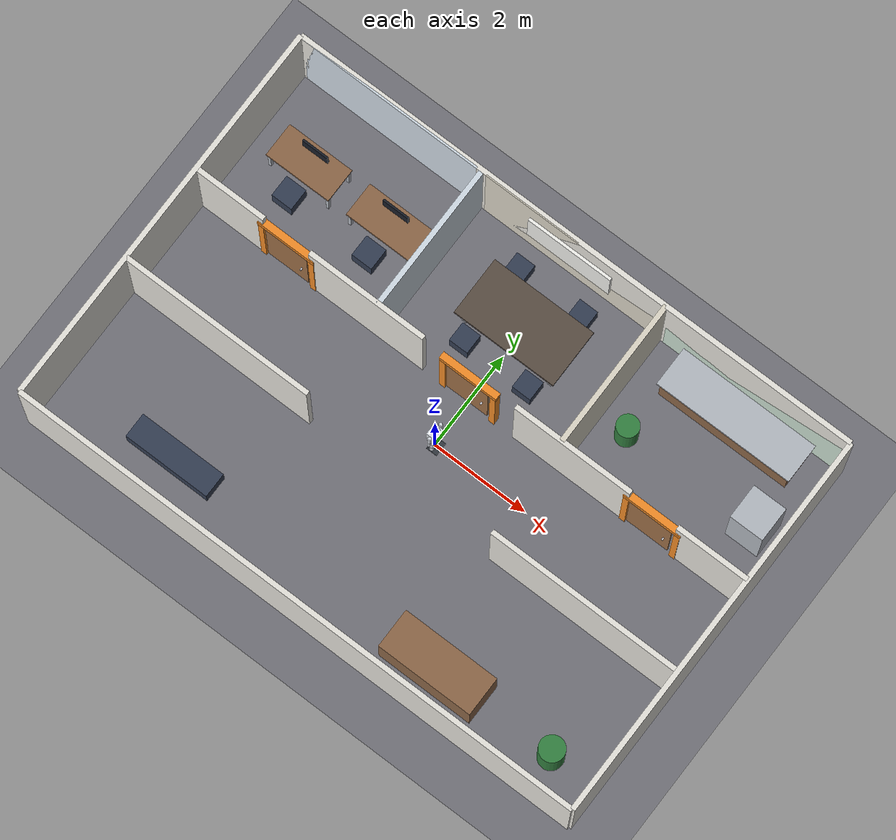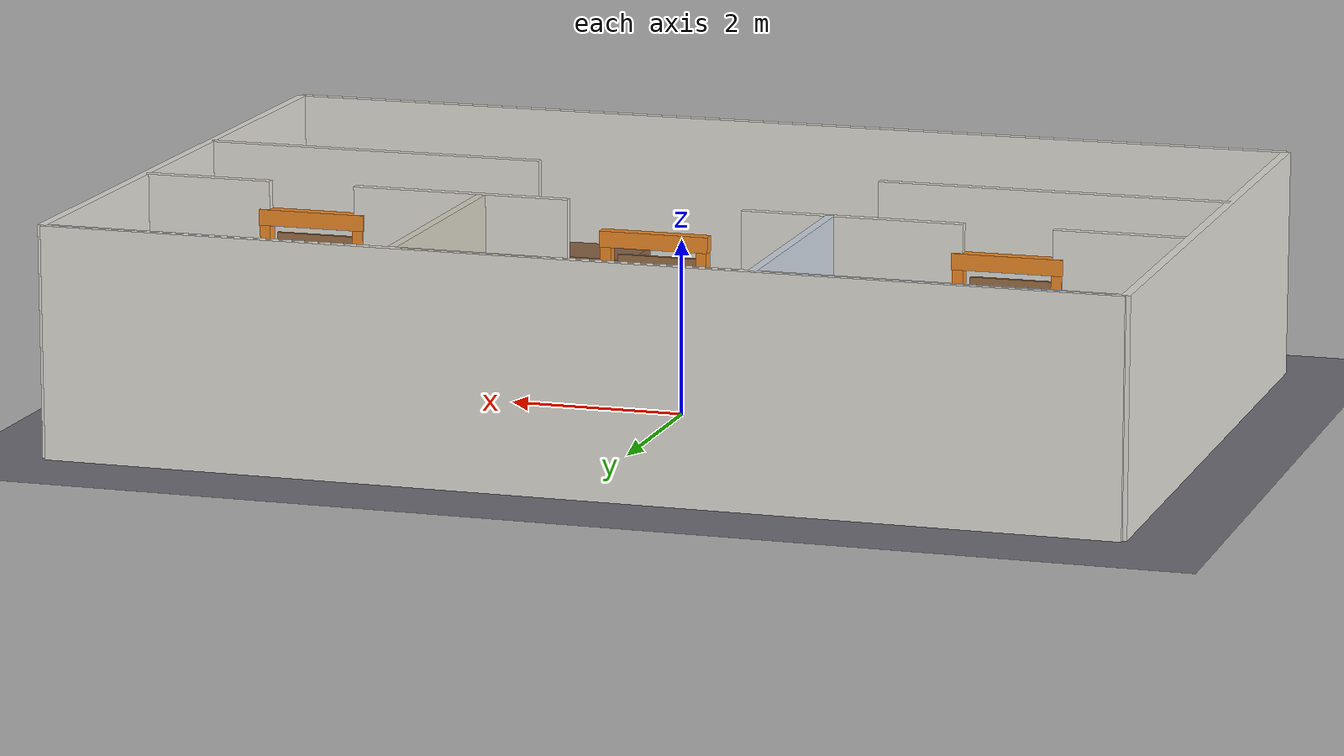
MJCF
<mujoco model="pyunto_office">
  <include file="pyunto_h1.xml"/>

  <statistic center="0 0 1.0" extent="8"/>

  <option timestep="0.005" iterations="50" solver="Newton" cone="elliptic"/>

  <visual>
    <headlight diffuse="0.55 0.55 0.55" ambient="0.4 0.4 0.4" specular="0 0 0"/>
    <rgba haze="0.6 0.65 0.7 1"/>
    <global azimuth="150" elevation="-25" offwidth="1600" offheight="1200"/>
    <map znear="0.02" zfar="60"/>
  </visual>

  <asset>
    <texture type="skybox" builtin="gradient" rgb1="0.75 0.8 0.85" rgb2="0.45 0.5 0.58"
             width="512" height="640"/>

    <!-- Floor: neutral office carpet -->
    <texture name="carpet_tex" type="2d" builtin="checker" rgb1="0.42 0.42 0.45"
             rgb2="0.46 0.46 0.49" width="512" height="512"/>
    <material name="carpet" texture="carpet_tex" texrepeat="24 16" texuniform="true"
              reflectance="0.02"/>

    <!-- Rooms are colour-coded so they are visually distinguishable from images alone. -->
    <material name="wall"        rgba="0.90 0.89 0.86 1" specular="0.1"/>
    <material name="wall_work"   rgba="0.82 0.86 0.90 1" specular="0.1"/>  <!-- cool blue -->
    <material name="wall_meet"   rgba="0.86 0.84 0.78 1" specular="0.1"/>  <!-- warm beige -->
    <material name="wall_pantry" rgba="0.80 0.88 0.82 1" specular="0.1"/>  <!-- soft green -->

    <material name="door_panel" rgba="0.62 0.44 0.28 1" specular="0.25" shininess="0.3"/>
    <material name="door_frame" rgba="0.95 0.55 0.15 1" specular="0.3"/>   <!-- accent -->
    <material name="handle_mat" rgba="0.85 0.85 0.88 1" specular="0.8" shininess="0.8"/>

    <material name="desk"   rgba="0.55 0.40 0.28 1" specular="0.2"/>
    <material name="table"  rgba="0.35 0.30 0.26 1" specular="0.2"/>
    <material name="chair"  rgba="0.20 0.24 0.32 1" specular="0.2"/>
    <material name="metal"  rgba="0.70 0.72 0.75 1" specular="0.6" shininess="0.6"/>
    <material name="screen" rgba="0.10 0.12 0.16 1" specular="0.5" shininess="0.7"/>
    <material name="plant"  rgba="0.20 0.50 0.25 1"/>
    <material name="board"  rgba="0.95 0.95 0.93 1" specular="0.3"/>
  </asset>

  <default>
    <default class="wall">
      <geom type="box" condim="3" friction="0.8 0.05 0.01" material="wall" group="1"/>
    </default>
    <default class="furniture">
      <geom type="box" condim="3" friction="0.9 0.05 0.01" group="1"/>
    </default>
    <default class="door">
      <!--
        damping smooths the swing; a weak spring returns the door to closed.
        frictionloss is deliberately small - too much and the robot cannot push it open at all.
      -->
      <joint type="hinge" axis="0 0 1" damping="2.5" frictionloss="0.2" springref="0"
             stiffness="0.8" range="-1.9 1.9"/>
      <!--
        density 240 gives a ~22 kg door leaf. Inheriting the robot's 900 made it 100 kg, which
        no arm could move. condim=3 keeps contact cheap; the panel never needs to spin in place.
      -->
      <geom type="box" condim="3" density="240" friction="0.5 0.05 0.01"
            material="door_panel" group="1"/>
    </default>
  </default>

  <worldbody>
    <light name="ceil_1" pos="-4 0 3.4" dir="0 0 -1" directional="false"
           diffuse="0.45 0.45 0.44" attenuation="1 0 0.02"/>
    <light name="ceil_2" pos="0 0 3.4" dir="0 0 -1" directional="false"
           diffuse="0.45 0.45 0.44" attenuation="1 0 0.02"/>
    <light name="ceil_3" pos="4 0 3.4" dir="0 0 -1" directional="false"
           diffuse="0.45 0.45 0.44" attenuation="1 0 0.02"/>
    <light name="sun" pos="0 -8 8" dir="0 0.6 -1" directional="true" diffuse="0.35 0.35 0.35"/>

    <geom name="floor" type="plane" size="0 0 0.05" material="carpet"
          condim="6" friction="1.2 0.05 0.01"/>

    <!-- Overview cameras for debugging and demo video. head_cam on the robot is the real sensor. -->
    <camera name="overview" pos="0 -13 11" xyaxes="1 0 0 0 0.65 0.76"/>
    <camera name="corridor_cam" pos="-7 0 2.2" xyaxes="0 1 0 0.25 0 0.97"/>

    <!-- =========================== OUTER SHELL =========================== -->
    <!-- 12 x 8 m footprint, 2.6 m walls, 0.1 m thick -->
    <geom name="wall_north" class="wall" size="6.0 0.05 1.3" pos="0 4.0 1.3"/>
    <geom name="wall_south" class="wall" size="6.0 0.05 1.3" pos="0 -4.0 1.3"/>
    <geom name="wall_west"  class="wall" size="0.05 4.0 1.3" pos="-6.0 0 1.3"/>
    <geom name="wall_east"  class="wall" size="0.05 4.0 1.3" pos="6.0 0 1.3"/>

    <!-- ==================== ROOM DIVIDERS (north half) ==================== -->
    <!-- Two partitions split the north strip into workspace | meeting | pantry -->
    <geom name="part_1" class="wall" size="0.05 1.5 1.3" pos="-2.0 2.5 1.3" material="wall_work"/>
    <geom name="part_2" class="wall" size="0.05 1.5 1.3" pos="2.0 2.5 1.3" material="wall_meet"/>

    <!--
      The wall between the corridor and the north rooms, with three doorway gaps.
      Gaps are centred at x = -4.0 (workspace), 0.0 (meeting), 4.0 (pantry), each 1.0 m wide.
    -->
    <geom name="nwall_a" class="wall" size="0.75 0.05 1.3" pos="-5.25 1.0 1.3"/>
    <geom name="nwall_b" class="wall" size="1.25 0.05 1.3" pos="-2.25 1.0 1.3"/>
    <geom name="nwall_c" class="wall" size="1.25 0.05 1.3" pos="2.25 1.0 1.3"/>
    <geom name="nwall_d" class="wall" size="0.75 0.05 1.3" pos="5.25 1.0 1.3"/>

    <!-- Corridor / lobby divider, with one wide opening in the middle -->
    <geom name="swall_a" class="wall" size="2.0 0.05 1.3" pos="-4.0 -1.0 1.3"/>
    <geom name="swall_b" class="wall" size="2.0 0.05 1.3" pos="4.0 -1.0 1.3"/>

    <!-- =========================== DOOR 1: WORKSPACE =========================== -->
    <!-- Bright frames make doors findable from a distance in camera images. -->
    <geom name="frame_1a" type="box" size="0.06 0.07 1.05" pos="-4.55 1.0 1.05"
          material="door_frame"/>
    <geom name="frame_1b" type="box" size="0.06 0.07 1.05" pos="-3.45 1.0 1.05"
          material="door_frame"/>
    <geom name="frame_1top" type="box" size="0.62 0.07 0.09" pos="-4.0 1.0 2.19"
          material="door_frame"/>
    <body name="door_workspace" pos="-4.5 1.0 1.02">
      <joint name="door_1" class="door"/>
      <geom name="door_1_panel" class="door" size="0.46 0.022 1.0" pos="0.46 0 0"/>
      <!-- Handle at 0.90 m: the height the arm reach was designed around. -->
      <geom name="door_1_handle" type="capsule" fromto="0.80 -0.06 -0.12 0.80 0.06 -0.12"
            size="0.018" material="handle_mat"/>
      <site name="handle_1" pos="0.80 0 -0.12" size="0.03" rgba="1 0.3 0 0.35"/>
    </body>

    <!-- =========================== DOOR 2: MEETING =========================== -->
    <geom name="frame_2a" type="box" size="0.06 0.07 1.05" pos="-0.55 1.0 1.05"
          material="door_frame"/>
    <geom name="frame_2b" type="box" size="0.06 0.07 1.05" pos="0.55 1.0 1.05"
          material="door_frame"/>
    <geom name="frame_2top" type="box" size="0.62 0.07 0.09" pos="0 1.0 2.19"
          material="door_frame"/>
    <body name="door_meeting" pos="-0.5 1.0 1.02">
      <joint name="door_2" class="door"/>
      <geom name="door_2_panel" class="door" size="0.46 0.022 1.0" pos="0.46 0 0"/>
      <geom name="door_2_handle" type="capsule" fromto="0.80 -0.06 -0.12 0.80 0.06 -0.12"
            size="0.018" material="handle_mat"/>
      <site name="handle_2" pos="0.80 0 -0.12" size="0.03" rgba="1 0.3 0 0.35"/>
    </body>

    <!-- =========================== DOOR 3: PANTRY =========================== -->
    <geom name="frame_3a" type="box" size="0.06 0.07 1.05" pos="3.45 1.0 1.05"
          material="door_frame"/>
    <geom name="frame_3b" type="box" size="0.06 0.07 1.05" pos="4.55 1.0 1.05"
          material="door_frame"/>
    <geom name="frame_3top" type="box" size="0.62 0.07 0.09" pos="4.0 1.0 2.19"
          material="door_frame"/>
    <body name="door_pantry" pos="3.5 1.0 1.02">
      <joint name="door_3" class="door"/>
      <geom name="door_3_panel" class="door" size="0.46 0.022 1.0" pos="0.46 0 0"/>
      <geom name="door_3_handle" type="capsule" fromto="0.80 -0.06 -0.12 0.80 0.06 -0.12"
            size="0.018" material="handle_mat"/>
      <site name="handle_3" pos="0.80 0 -0.12" size="0.03" rgba="1 0.3 0 0.35"/>
    </body>

    <!-- ========================= WORKSPACE FURNITURE ========================= -->
    <!-- Desks with monitors: the visual signature of "the workspace". -->
    <geom name="ws_wall_tint" class="wall" size="1.9 0.02 1.3" pos="-4.0 3.97 1.3"
          material="wall_work"/>
    <body name="desk_1" pos="-4.8 2.6 0">
      <geom name="desk_1_top" class="furniture" size="0.7 0.35 0.03" pos="0 0 0.72"
            material="desk"/>
      <geom name="desk_1_l1" class="furniture" size="0.03 0.03 0.36" pos="-0.65 -0.3 0.36"
            material="metal"/>
      <geom name="desk_1_l2" class="furniture" size="0.03 0.03 0.36" pos="0.65 -0.3 0.36"
            material="metal"/>
      <geom name="desk_1_l3" class="furniture" size="0.03 0.03 0.36" pos="-0.65 0.3 0.36"
            material="metal"/>
      <geom name="desk_1_l4" class="furniture" size="0.03 0.03 0.36" pos="0.65 0.3 0.36"
            material="metal"/>
      <geom name="mon_1" class="furniture" size="0.28 0.02 0.18" pos="0 0.2 0.93"
            material="screen"/>
    </body>
    <body name="desk_2" pos="-3.0 2.6 0">
      <geom name="desk_2_top" class="furniture" size="0.7 0.35 0.03" pos="0 0 0.72"
            material="desk"/>
      <geom name="desk_2_l1" class="furniture" size="0.03 0.03 0.36" pos="-0.65 -0.3 0.36"
            material="metal"/>
      <geom name="desk_2_l2" class="furniture" size="0.03 0.03 0.36" pos="0.65 -0.3 0.36"
            material="metal"/>
      <geom name="mon_2" class="furniture" size="0.28 0.02 0.18" pos="0 0.2 0.93"
            material="screen"/>
    </body>
    <geom name="ws_chair_1" class="furniture" size="0.22 0.22 0.22" pos="-4.8 2.0 0.22"
          material="chair"/>
    <geom name="ws_chair_2" class="furniture" size="0.22 0.22 0.22" pos="-3.0 2.0 0.22"
          material="chair"/>

    <!-- ========================== MEETING FURNITURE ========================== -->
    <!-- One big central table + a whiteboard: the signature of "the meeting room". -->
    <geom name="mt_wall_tint" class="wall" size="1.9 0.02 1.3" pos="0 3.97 1.3"
          material="wall_meet"/>
    <body name="meeting_table" pos="0 2.6 0">
      <geom name="mtable_top" class="furniture" size="1.1 0.6 0.04" pos="0 0 0.71"
            material="table"/>
      <geom name="mtable_leg1" class="furniture" size="0.05 0.05 0.355" pos="-0.95 -0.45 0.355"
            material="metal"/>
      <geom name="mtable_leg2" class="furniture" size="0.05 0.05 0.355" pos="0.95 -0.45 0.355"
            material="metal"/>
      <geom name="mtable_leg3" class="furniture" size="0.05 0.05 0.355" pos="-0.95 0.45 0.355"
            material="metal"/>
      <geom name="mtable_leg4" class="furniture" size="0.05 0.05 0.355" pos="0.95 0.45 0.355"
            material="metal"/>
    </body>
    <geom name="whiteboard" class="furniture" size="0.9 0.03 0.55" pos="0 3.9 1.5"
          material="board"/>
    <geom name="mt_chair_1" class="furniture" size="0.2 0.2 0.22" pos="-0.7 1.8 0.22"
          material="chair"/>
    <geom name="mt_chair_2" class="furniture" size="0.2 0.2 0.22" pos="0.7 1.8 0.22"
          material="chair"/>
    <geom name="mt_chair_3" class="furniture" size="0.2 0.2 0.22" pos="-0.7 3.4 0.22"
          material="chair"/>
    <geom name="mt_chair_4" class="furniture" size="0.2 0.2 0.22" pos="0.7 3.4 0.22"
          material="chair"/>

    <!-- =========================== PANTRY FURNITURE =========================== -->
    <!-- Counter + tall fridge: the signature of "the pantry". -->
    <geom name="pt_wall_tint" class="wall" size="1.9 0.02 1.3" pos="4.0 3.97 1.3"
          material="wall_pantry"/>
    <geom name="counter" class="furniture" size="1.4 0.35 0.45" pos="4.0 3.5 0.45"
          material="desk"/>
    <geom name="counter_top" class="furniture" size="1.45 0.4 0.03" pos="4.0 3.5 0.93"
          material="metal"/>
    <geom name="fridge" class="furniture" size="0.35 0.35 0.85" pos="5.4 2.2 0.85"
          material="metal"/>
    <geom name="pt_plant" type="cylinder" size="0.22 0.45" pos="2.6 2.2 0.45"
          material="plant" group="1"/>

    <!-- ============================ LOBBY / CORRIDOR ============================ -->
    <geom name="lobby_bench" class="furniture" size="0.9 0.25 0.22" pos="-3.5 -3.0 0.22"
          material="chair"/>
    <geom name="lobby_plant" type="cylinder" size="0.25 0.55" pos="5.0 -3.2 0.55"
          material="plant" group="1"/>
    <geom name="reception" class="furniture" size="1.0 0.4 0.55" pos="2.5 -3.2 0.55"
          material="desk"/>
  </worldbody>

  <equality>
    <weld name="grasp_1" body1="palm_r" body2="door_workspace" active="false" solref="0.02 1"/>
    <weld name="grasp_2" body1="palm_r" body2="door_meeting" active="false" solref="0.02 1"/>
    <weld name="grasp_3" body1="palm_r" body2="door_pantry" active="false" solref="0.02 1"/>
  </equality>

  <contact>
    <exclude body1="door_workspace" body2="world"/>
    <exclude body1="door_meeting" body2="world"/>
    <exclude body1="door_pantry" body2="world"/>
  </contact>

  <keyframe>
    <key name="start"
         qpos="0 -0.6 0.8136   0.7071 0 0 0.7071
               0 0
               -0.25 -0.12 0 -0.35   0 0
               -0.25  0.12 0 -0.35   0 0
               0 0 -0.25 0.5 -0.25 0
               0 0 -0.25 0.5 -0.25 0
               0 0 0"/>
    <!-- "lobby" starts the robot further away, in the south lobby, for longer navigation runs. -->
    <key name="lobby"
         qpos="0 -3.0 0.8136   0.7071 0 0 0.7071
               0 0
               -0.25 -0.12 0 -0.35   0 0
               -0.25  0.12 0 -0.35   0 0
               0 0 -0.25 0.5 -0.25 0
               0 0 -0.25 0.5 -0.25 0
               0 0 0"/>
  </keyframe>
</mujoco>

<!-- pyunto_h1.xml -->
<mujoco model="pyunto_h1">
  <compiler angle="radian" autolimits="true"/>

  <default>
    <!-- Servo defaults. kp is per-joint-group; heavier joints get more authority below. -->
    <default class="robot">
      <geom type="capsule" condim="3" friction="0.9 0.05 0.01" density="900"
            rgba="0.85 0.87 0.9 1" group="1"/>
      <joint type="hinge" damping="2" armature="0.02" limited="true"/>
      <position kp="120" dampratio="1" ctrllimited="true"/>

      <default class="leg">
        <joint damping="5" armature="0.05"/>
        <position kp="400" forcerange="-200 200"/>
      </default>
      <default class="arm">
        <joint damping="2" armature="0.02"/>
        <position kp="150" forcerange="-60 60"/>
      </default>
      <default class="finger">
        <joint damping="0.3" armature="0.005"/>
        <geom rgba="0.25 0.27 0.3 1" friction="2.0 0.1 0.01" condim="4"/>
        <position kp="30" forcerange="-25 25"/>
      </default>
      <!-- Feet: high friction, box-ish contact so the robot does not skate. -->
      <default class="foot">
        <geom type="box" friction="1.5 0.1 0.01" condim="6" rgba="0.2 0.22 0.25 1"/>
      </default>
      <default class="accent">
        <geom rgba="0.15 0.55 0.85 1"/>
      </default>
    </default>
  </default>

  <asset>
    <material name="body_mat" rgba="0.85 0.87 0.90 1" specular="0.3" shininess="0.4"/>
    <material name="dark_mat" rgba="0.20 0.22 0.25 1" specular="0.2"/>
    <material name="accent_mat" rgba="0.15 0.55 0.85 1" specular="0.5" shininess="0.6"/>
  </asset>

  <worldbody>
    <body name="pelvis" pos="0 0 0.789" childclass="robot">
      <freejoint name="root"/>
      <inertial pos="0 0 0" mass="6.0" diaginertia="0.06 0.05 0.04"/>
      <geom name="pelvis_g" type="box" size="0.085 0.10 0.06" material="body_mat"/>

      <!-- ================= TORSO ================= -->
      <body name="torso" pos="0 0 0.105">
        <joint name="waist_yaw" axis="0 0 1" range="-1.0 1.0"/>
        <inertial pos="0 0 0.16" mass="11.0" diaginertia="0.18 0.15 0.09"/>
        <geom name="torso_g" type="box" size="0.100 0.120 0.175" pos="0 0 0.165"
              material="body_mat"/>
        <geom name="chest_g" type="box" size="0.055 0.075 0.02" pos="0.055 0 0.22"
              material="accent_mat" class="accent"/>

        <!-- ================= HEAD + CAMERA ================= -->
        <!-- A short neck stub separates the head from the torso so they do not interpenetrate. -->
        <body name="head" pos="0 0 0.455">
          <inertial pos="0 0 0.03" mass="1.2" diaginertia="0.006 0.006 0.005"/>
          <geom name="neck_g" type="cylinder" size="0.032 0.030" pos="0 0 -0.055"
                material="dark_mat"/>
          <geom name="head_g" type="box" size="0.062 0.070 0.062" material="body_mat"/>
          <geom name="visor_g" type="box" size="0.018 0.062 0.026" pos="0.055 0 0.008"
                material="dark_mat"/>
          <camera name="head_cam" pos="0.075 0 0.01" xyaxes="0 -1 0 0 0 1" fovy="75"/>
          <site name="head_cam_site" pos="0.075 0 0.01" size="0.008" rgba="1 0 0 0.6"/>
          <camera name="look_left" pos="0.04 0.05 0.01" xyaxes="0.866 -0.5 0 0 0 1" fovy="90"/>
          <camera name="look_right" pos="0.04 -0.05 0.01" xyaxes="-0.866 -0.5 0 0 0 1" fovy="90"/>
        </body>

        <!-- ================= ARMS ================= -->
        <body name="shoulder_r" pos="0 -0.160 0.345">
          <joint name="sh_pitch_r" axis="0 1 0" range="-3.1 1.6" class="arm"/>
          <joint name="sh_roll_r" axis="1 0 0" range="-1.7 0.35" class="arm"/>
          <joint name="sh_yaw_r" axis="0 0 1" range="-1.6 1.6" class="arm"/>
          <inertial pos="0 0 -0.14" mass="1.6" diaginertia="0.012 0.012 0.004"/>
          <geom name="uarm_r" type="capsule" fromto="0 0 0 0 0 -0.285" size="0.038"
                material="body_mat"/>

          <body name="forearm_r" pos="0 0 -0.285">
            <joint name="elbow_r" axis="0 1 0" range="-2.4 0.0" class="arm"/>
            <inertial pos="0 0 -0.12" mass="1.0" diaginertia="0.006 0.006 0.002"/>
            <geom name="farm_r" type="capsule" fromto="0 0 0 0 0 -0.255" size="0.032"
                  material="body_mat"/>

            <!-- Palm + 2 fingers. Fingers are coupled by a tendon and driven by one actuator. -->
            <body name="palm_r" pos="0 0 -0.255">
              <inertial pos="0 0 -0.02" mass="0.25" diaginertia="0.0004 0.0004 0.0003"/>
              <geom name="palm_r_g" type="box" size="0.022 0.038 0.022" material="dark_mat"/>
              <site name="grip_r" pos="0 0 -0.062" size="0.012" rgba="0 1 0 0.5"/>
              <body name="finger_r1" pos="0 -0.032 -0.018">
                <joint name="grip_r1" axis="1 0 0" range="0 0.9" class="finger"/>
                <geom name="fing_r1" type="box" size="0.016 0.010 0.042" pos="0 0 -0.036"
                      class="finger"/>
              </body>
              <body name="finger_r2" pos="0 0.032 -0.018">
                <joint name="grip_r2" axis="-1 0 0" range="0 0.9" class="finger"/>
                <geom name="fing_r2" type="box" size="0.016 0.010 0.042" pos="0 0 -0.036"
                      class="finger"/>
              </body>
            </body>
          </body>
        </body>

        <body name="shoulder_l" pos="0 0.160 0.345">
          <joint name="sh_pitch_l" axis="0 1 0" range="-3.1 1.6" class="arm"/>
          <joint name="sh_roll_l" axis="1 0 0" range="-0.35 1.7" class="arm"/>
          <joint name="sh_yaw_l" axis="0 0 1" range="-1.6 1.6" class="arm"/>
          <inertial pos="0 0 -0.14" mass="1.6" diaginertia="0.012 0.012 0.004"/>
          <geom name="uarm_l" type="capsule" fromto="0 0 0 0 0 -0.285" size="0.038"
                material="body_mat"/>

          <body name="forearm_l" pos="0 0 -0.285">
            <joint name="elbow_l" axis="0 1 0" range="-2.4 0.0" class="arm"/>
            <inertial pos="0 0 -0.12" mass="1.0" diaginertia="0.006 0.006 0.002"/>
            <geom name="farm_l" type="capsule" fromto="0 0 0 0 0 -0.255" size="0.032"
                  material="body_mat"/>

            <body name="palm_l" pos="0 0 -0.255">
              <inertial pos="0 0 -0.02" mass="0.25" diaginertia="0.0004 0.0004 0.0003"/>
              <geom name="palm_l_g" type="box" size="0.022 0.038 0.022" material="dark_mat"/>
              <site name="grip_l" pos="0 0 -0.062" size="0.012" rgba="0 1 0 0.5"/>
              <body name="finger_l1" pos="0 -0.032 -0.018">
                <joint name="grip_l1" axis="1 0 0" range="0 0.9" class="finger"/>
                <geom name="fing_l1" type="box" size="0.016 0.010 0.042" pos="0 0 -0.036"
                      class="finger"/>
              </body>
              <body name="finger_l2" pos="0 0.032 -0.018">
                <joint name="grip_l2" axis="-1 0 0" range="0 0.9" class="finger"/>
                <geom name="fing_l2" type="box" size="0.016 0.010 0.042" pos="0 0 -0.036"
                      class="finger"/>
              </body>
            </body>
          </body>
        </body>
      </body>

      <!-- ================= LEGS ================= -->
      <!-- Hip order yaw -> roll -> pitch mirrors how humanoid IK is normally decomposed. -->
      <body name="hip_r" pos="0 -0.088 -0.062">
        <joint name="hip_yaw_r" axis="0 0 1" range="-0.7 0.7" class="leg"/>
        <joint name="hip_roll_r" axis="1 0 0" range="-0.5 0.5" class="leg"/>
        <joint name="hip_pitch_r" axis="0 1 0" range="-1.9 1.0" class="leg"/>
        <inertial pos="0 0 -0.18" mass="4.0" diaginertia="0.03 0.03 0.008"/>
        <geom name="thigh_r" type="capsule" fromto="0 0 0 0 0 -0.367" size="0.052"
              material="body_mat"/>

        <body name="shin_r" pos="0 0 -0.367">
          <joint name="knee_r" axis="0 1 0" range="0 2.2" class="leg"/>
          <inertial pos="0 0 -0.17" mass="2.8" diaginertia="0.02 0.02 0.004"/>
          <geom name="shin_r_g" type="capsule" fromto="0 0 0 0 0 -0.352" size="0.044"
                material="body_mat"/>

          <body name="foot_r" pos="0 0 -0.352">
            <joint name="ank_pitch_r" axis="0 1 0" range="-0.9 0.6" class="leg"/>
            <joint name="ank_roll_r" axis="1 0 0" range="-0.4 0.4" class="leg"/>
            <inertial pos="0.02 0 -0.03" mass="0.9" diaginertia="0.003 0.004 0.002"/>
            <geom name="foot_r_g" size="0.115 0.050 0.0225" pos="0.028 0 -0.0325" class="foot"/>
          </body>
        </body>
      </body>

      <body name="hip_l" pos="0 0.088 -0.062">
        <joint name="hip_yaw_l" axis="0 0 1" range="-0.7 0.7" class="leg"/>
        <joint name="hip_roll_l" axis="1 0 0" range="-0.5 0.5" class="leg"/>
        <joint name="hip_pitch_l" axis="0 1 0" range="-1.9 1.0" class="leg"/>
        <inertial pos="0 0 -0.18" mass="4.0" diaginertia="0.03 0.03 0.008"/>
        <geom name="thigh_l" type="capsule" fromto="0 0 0 0 0 -0.367" size="0.052"
              material="body_mat"/>

        <body name="shin_l" pos="0 0 -0.367">
          <joint name="knee_l" axis="0 1 0" range="0 2.2" class="leg"/>
          <inertial pos="0 0 -0.17" mass="2.8" diaginertia="0.02 0.02 0.004"/>
          <geom name="shin_l_g" type="capsule" fromto="0 0 0 0 0 -0.352" size="0.044"
                material="body_mat"/>

          <body name="foot_l" pos="0 0 -0.352">
            <joint name="ank_pitch_l" axis="0 1 0" range="-0.9 0.6" class="leg"/>
            <joint name="ank_roll_l" axis="1 0 0" range="-0.4 0.4" class="leg"/>
            <inertial pos="0.02 0 -0.03" mass="0.9" diaginertia="0.003 0.004 0.002"/>
            <geom name="foot_l_g" size="0.115 0.050 0.0225" pos="0.028 0 -0.0325" class="foot"/>
          </body>
        </body>
      </body>
    </body>
  </worldbody>

  <!-- Couple each hand's two fingers so one actuator closes both symmetrically. -->
  <tendon>
    <fixed name="grip_r_t">
      <joint joint="grip_r1" coef="1"/>
      <joint joint="grip_r2" coef="-1"/>
    </fixed>
    <fixed name="grip_l_t">
      <joint joint="grip_l1" coef="1"/>
      <joint joint="grip_l2" coef="-1"/>
    </fixed>
  </tendon>
  <equality>
    <tendon tendon1="grip_r_t"/>
    <tendon tendon1="grip_l_t"/>
  </equality>

  <!-- Neighbouring links always touch; excluding them avoids constant contact churn. -->
  <contact>
    <exclude body1="pelvis" body2="torso"/>
    <exclude body1="pelvis" body2="hip_r"/>
    <exclude body1="pelvis" body2="hip_l"/>
    <exclude body1="torso" body2="shoulder_r"/>
    <exclude body1="torso" body2="shoulder_l"/>
    <exclude body1="torso" body2="head"/>
    <exclude body1="palm_r" body2="finger_r1"/>
    <exclude body1="palm_r" body2="finger_r2"/>
    <exclude body1="palm_l" body2="finger_l1"/>
    <exclude body1="palm_l" body2="finger_l2"/>
  </contact>

  <actuator>
    <!-- legs (12) -->
    <position name="hip_yaw_r" joint="hip_yaw_r" ctrlrange="-0.7 0.7" class="leg"/>
    <position name="hip_roll_r" joint="hip_roll_r" ctrlrange="-0.5 0.5" class="leg"/>
    <position name="hip_pitch_r" joint="hip_pitch_r" ctrlrange="-1.9 1.0" class="leg"/>
    <position name="knee_r" joint="knee_r" ctrlrange="0 2.2" class="leg"/>
    <position name="ank_pitch_r" joint="ank_pitch_r" ctrlrange="-0.9 0.6" class="leg"/>
    <position name="ank_roll_r" joint="ank_roll_r" ctrlrange="-0.4 0.4" class="leg"/>
    <position name="hip_yaw_l" joint="hip_yaw_l" ctrlrange="-0.7 0.7" class="leg"/>
    <position name="hip_roll_l" joint="hip_roll_l" ctrlrange="-0.5 0.5" class="leg"/>
    <position name="hip_pitch_l" joint="hip_pitch_l" ctrlrange="-1.9 1.0" class="leg"/>
    <position name="knee_l" joint="knee_l" ctrlrange="0 2.2" class="leg"/>
    <position name="ank_pitch_l" joint="ank_pitch_l" ctrlrange="-0.9 0.6" class="leg"/>
    <position name="ank_roll_l" joint="ank_roll_l" ctrlrange="-0.4 0.4" class="leg"/>
    <!-- waist (1) -->
    <position name="waist_yaw" joint="waist_yaw" ctrlrange="-1.0 1.0"/>
    <!-- arms (8) -->
    <position name="sh_pitch_r" joint="sh_pitch_r" ctrlrange="-3.1 1.6" class="arm"/>
    <position name="sh_roll_r" joint="sh_roll_r" ctrlrange="-1.7 0.35" class="arm"/>
    <position name="sh_yaw_r" joint="sh_yaw_r" ctrlrange="-1.6 1.6" class="arm"/>
    <position name="elbow_r" joint="elbow_r" ctrlrange="-2.4 0.0" class="arm"/>
    <position name="sh_pitch_l" joint="sh_pitch_l" ctrlrange="-3.1 1.6" class="arm"/>
    <position name="sh_roll_l" joint="sh_roll_l" ctrlrange="-0.35 1.7" class="arm"/>
    <position name="sh_yaw_l" joint="sh_yaw_l" ctrlrange="-1.6 1.6" class="arm"/>
    <position name="elbow_l" joint="elbow_l" ctrlrange="-2.4 0.0" class="arm"/>
    <!-- grippers (2): one per hand, fingers follow via the tendon equality -->
    <position name="grip_r" joint="grip_r1" ctrlrange="0 0.9" class="finger"/>
    <position name="grip_l" joint="grip_l1" ctrlrange="0 0.9" class="finger"/>
  </actuator>

  <keyframe>
    <key name="stand"
         qpos="0 0 0.8136  1 0 0 0
               0
               -0.25 -0.12 0 -0.35   0 0
               -0.25  0.12 0 -0.35   0 0
               0 0 -0.25 0.5 -0.25 0
               0 0 -0.25 0.5 -0.25 0"/>
  </keyframe>
</mujoco>
